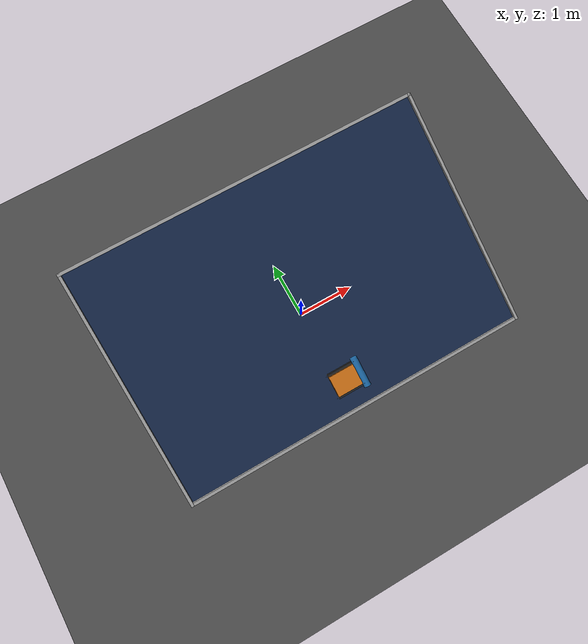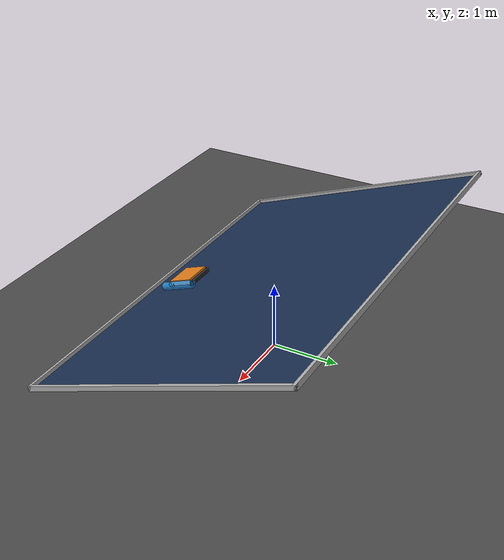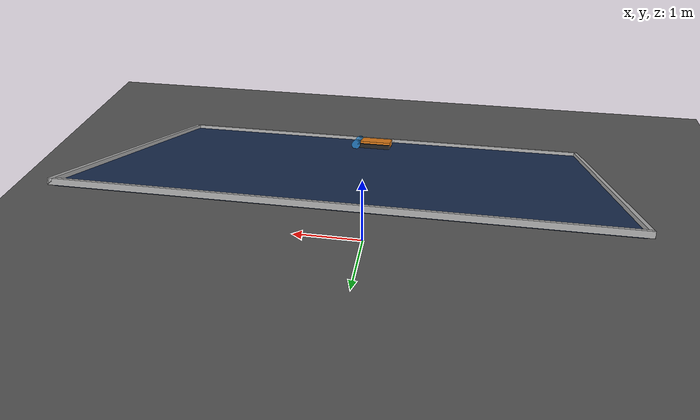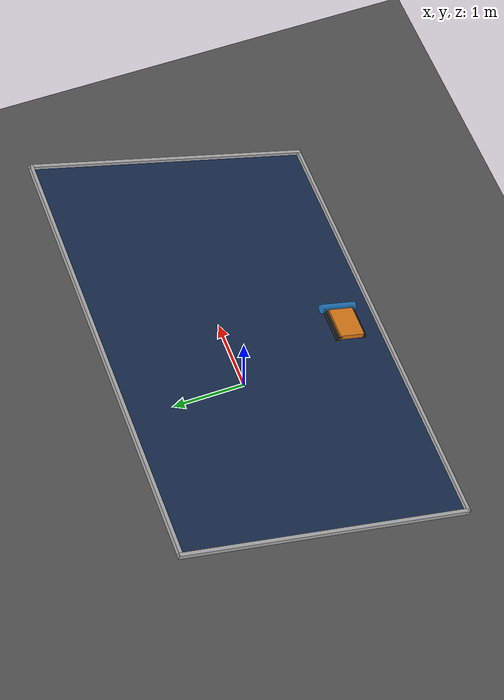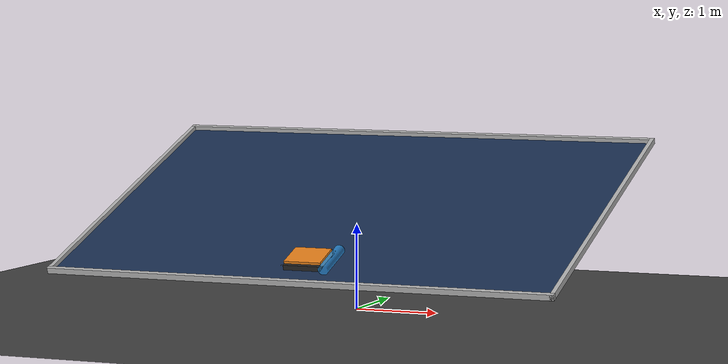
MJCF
<mujoco model="solar_cleaning_crawler">
  <compiler angle="radian" coordinate="local"/>
  <option gravity="0 0 -9.81" timestep="0.002" solver="Newton" iterations="40"/>

  <default>
    <!-- High-friction EPDM rubber tread contact physics -->
    <geom condim="4" friction="1.8 0.08 0.005" solref="0.005 1.0" solimp="0.9 0.95 0.001 0.5 2"/>
    <motor ctrllimited="true"/>
  </default>

  <worldbody>
    <!-- Ground Base Plane -->
    <geom name="floor" type="plane" size="10 10 0.1" rgba="0.3 0.3 0.3 1"/>
    <light directional="true" pos="0 0 10" dir="0 0 -1" castshadow="false"/>

    <!-- 20-DEGREE INCLINED SOLAR PANEL ARRAY RACK                          -->
    <!-- Incline angle: 20 deg = 0.349066 rad about X-axis                   -->
    <body name="pv_array_rack" pos="0 0 1.2" euler="0.349066 0 0">
      <!-- Tempered Glass Surface (6.0m x 4.0m) -->
      <geom name="pv_glass_surface" type="box" size="3.0 2.0 0.02" rgba="0.1 0.18 0.32 0.9" friction="0.4 0.005 0.0001" mass="150.0"/>

      <!-- Aluminum Perimeter Framing (0.035m height) -->
      <geom name="frame_top"    type="box" size="3.05 0.025 0.035" pos="0 2.025 0.035" rgba="0.7 0.7 0.7 1"/>
      <geom name="frame_bottom" type="box" size="3.05 0.025 0.035" pos="0 -2.025 0.035" rgba="0.7 0.7 0.7 1"/>
      <geom name="frame_left"   type="box" size="0.025 2.05 0.035" pos="-3.025 0 0.035" rgba="0.7 0.7 0.7 1"/>
      <geom name="frame_right"  type="box" size="0.025 2.05 0.035" pos="3.025 0 0.035" rgba="0.7 0.7 0.7 1"/>

      <!-- TRACKED CRAWLER CLEANING ROBOT (Mass: 8.5 kg, Low CoM: 0.04m)     -->
      <body name="crawler_chassis" pos="0 -1.5 0.08">
        <freejoint name="crawler_root"/>
        <!-- Main Chassis Body -->
        <geom name="chassis_geom" type="box" size="0.22 0.18 0.04" rgba="0.9 0.5 0.1 1" mass="6.0"/>
        <site name="chassis_imu" pos="0 0 0.02"/>

        <!-- Left Track Geom -->
        <geom name="track_left" type="box" size="0.22 0.04 0.03" pos="0 0.18 -0.02" rgba="0.15 0.15 0.15 1" mass="1.0"/>
        <!-- Right Track Geom -->
        <geom name="track_right" type="box" size="0.22 0.04 0.03" pos="0 -0.18 -0.02" rgba="0.15 0.15 0.15 1" mass="1.0"/>

        <!-- Front Rotary Microfiber Cleaning Brush (0.55m width, 900 RPM) -->
        <body name="rotary_brush" pos="0.28 0 -0.01">
          <joint name="brush_hinge" type="hinge" axis="0 1 0" damping="0.05"/>
          <geom name="brush_cylinder" type="cylinder" size="0.06 0.26" zaxis="0 1 0" rgba="0.2 0.6 0.9 0.8" mass="1.2"/>
          <site name="brush_contact" pos="0 0 -0.06"/>
        </body>

        <!-- Tactile Limit Sensors at 4 Corners -->
        <site name="bumper_fl" pos="0.25 0.20 0"/>
        <site name="bumper_fr" pos="0.25 -0.20 0"/>
        <site name="bumper_rl" pos="-0.25 0.20 0"/>
        <site name="bumper_rr" pos="-0.25 -0.20 0"/>
      </body>
    </body>
  </worldbody>

  <actuator>
    <!-- Differential Drive Motors -->
    <motor name="motor_track_left" body="crawler_chassis" gear="1 0 0 0 0 0" ctrlrange="-150 150"/>
    <motor name="motor_track_right" body="crawler_chassis" gear="0 1 0 0 0 0" ctrlrange="-150 150"/>
    <!-- Rotary Brush Velocity Motor (900 RPM = 94.2 rad/s) -->
    <velocity name="motor_brush" joint="brush_hinge" kv="20.0" ctrlrange="-120 120"/>
  </actuator>

  <sensor>
    <accelerometer name="crawler_accel" site="chassis_imu"/>
    <gyro name="crawler_gyro" site="chassis_imu"/>
    <touch name="touch_fl" site="bumper_fl"/>
    <touch name="touch_fr" site="bumper_fr"/>
  </sensor>
</mujoco>
